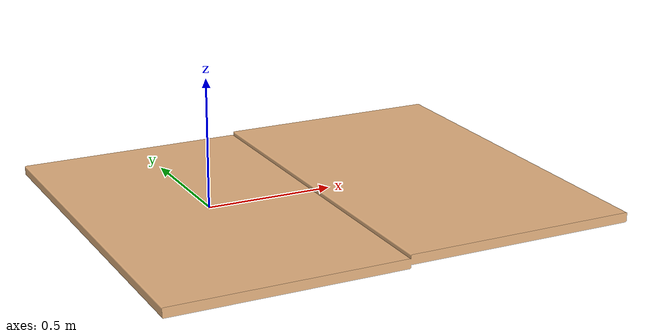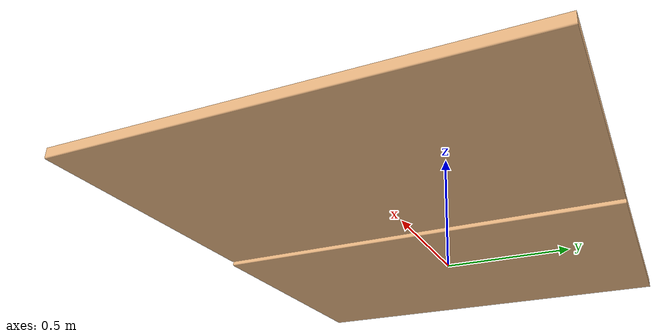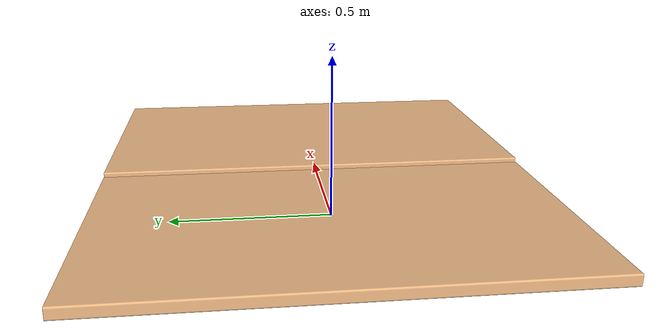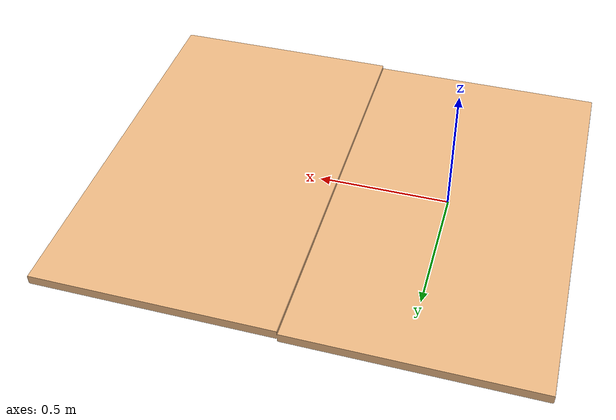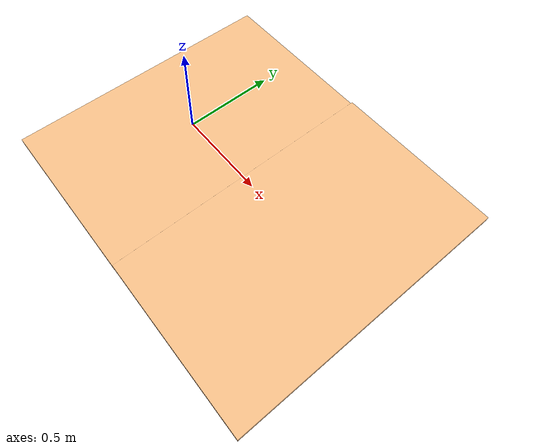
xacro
<?xml version="1.0"?>
<robot name="table">
  <link name="table_top_origin">
    <visual>
      	<geometry>
          	<mesh filename="package://gen_utilities/meshes/table/table_top.stl"
                scale="1 1 1"/>
      	</geometry>
	  	<material name="ABS" >
          	<color rgba="0.9 0.7 0.5 1.0" />
         </material>
    	</visual>
  </link>
</robot>
